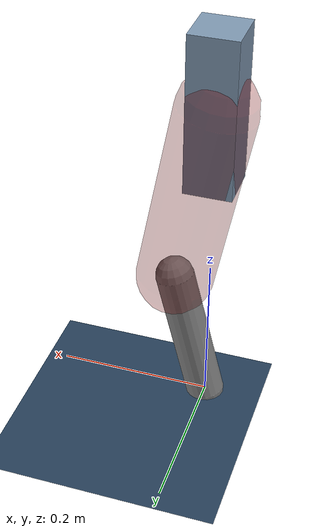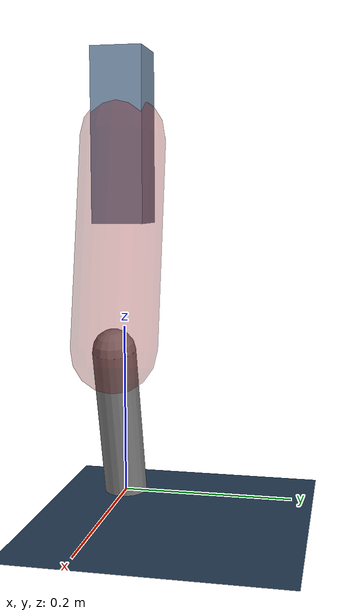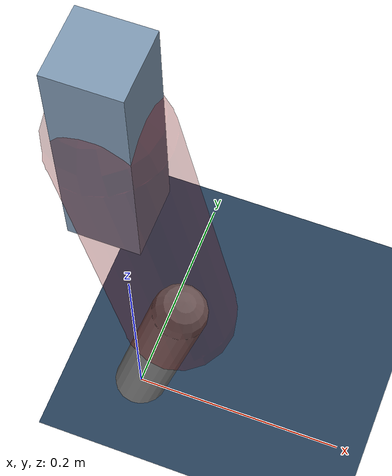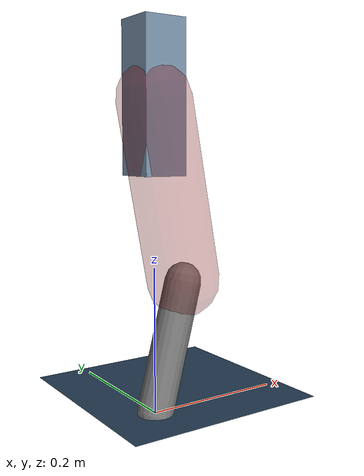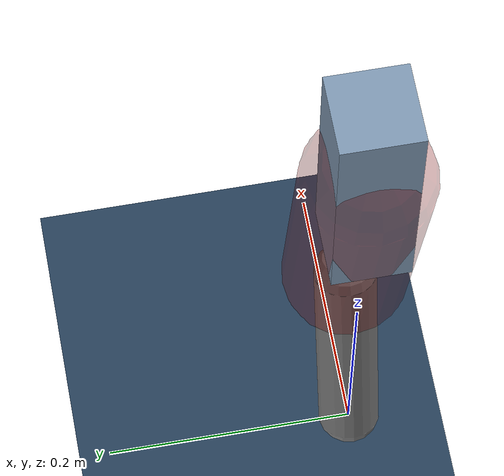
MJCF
<mujoco model="Hopper2D">
	<compiler inertiafromgeom="true" angle="radian" />
	<option timestep="0.001" integrator="implicit" cone="elliptic" solver="Newton" tolerance="1e-10" />

	<default>
		<geom contype="1" conaffinity="1" condim="3" friction="2 0.005 0.0001" solref="0.005 1" />
		<joint limited="true" damping="0.1" />
	</default>

	<asset>
		<texture name="skybox" type="skybox" builtin="gradient" rgb1=".4 .6 .8" rgb2="0 0 0" width="800" height="800" />
		<texture name="grid" type="2d" builtin="checker" rgb1=".1 .2 .3" rgb2=".2 .3 .4" width="300" height="300" mark="edge" markrgb=".2 .3 .4" />
		<material name="ground" texture="grid" texrepeat="1 1" texuniform="true" reflectance="0.1" />
		<material name="leg" rgba="0.5 0.6 0.7 1" />
	</asset>

	<worldbody>

		<geom name="floor" type="plane" size="5 5 0.25" material="ground" />

		<light directional="false" diffuse="0.8 0.8 0.8" specular="0.3 0.3 0.3" pos="0 0 2" dir="0 0 -1" />
		<light mode="targetbodycom" target="base" directional="false" diffuse="0.8 0.8 0.8" specular="0.3 0.3 0.3" pos="0 0 2" dir="0 0 -1" />

		<camera name="fixed" pos="0 -2 1" xyaxes="1 0 0 0 0 1" />
		<camera name="tracking" mode="trackcom" pos="0 -3 1" />

		<body name="root" pos="0 0 0.423049213600765">
			<joint name="slide_x" type="slide" axis="1 0 0" range="-100 100" />
			<joint name="slide_z" type="slide" axis="0 0 1" range="0 10" />

			<body name="base" pos="0 0 0">
				<geom name="torso" type="box" size="0.03 0.03 0.1" mass="2.6550000000000002" material="leg" />

				<body name="link1" pos="0 0 0" euler="0 1.3853958795173713 0">
					<joint type="hinge" axis="0 -1 0" pos="0 0 0" name="hinge1" limited="true" range="-3.14 3.14" stiffness="0" damping="0.1" />
					<geom name="thigh" type="capsule" fromto="0 0 0 0.24814445334059598 0 0" size="0.05" rgba="0.5 0 0 0.3" mass="0.8515755786855496" />

					<body name="link2" pos="0.24814445334059598 0 0" euler="0 0.4353826513560211 0">
						<joint type="hinge" axis="0 -1 0" pos="0 0 0" name="hinge2" limited="true" range="-3.14 3.14" stiffness="0" damping="0.1" />
						<geom name="shank" type="capsule" fromto="0 0 0 0.18490476026016903 0 0" size="0.025" mass="0.3881142842341521" />

					</body>
				</body>
			</body>
		</body>
	</worldbody>

	<actuator>
		<motor name="torque1" joint="hinge1" ctrlrange="-67.4111787940921 67.4111787940921" ctrllimited="true" gear="1" />
		<motor name="torque2" joint="hinge2" ctrlrange="-134.40849835974663 134.40849835974663" ctrllimited="true" gear="1" />
	</actuator>
</mujoco>
